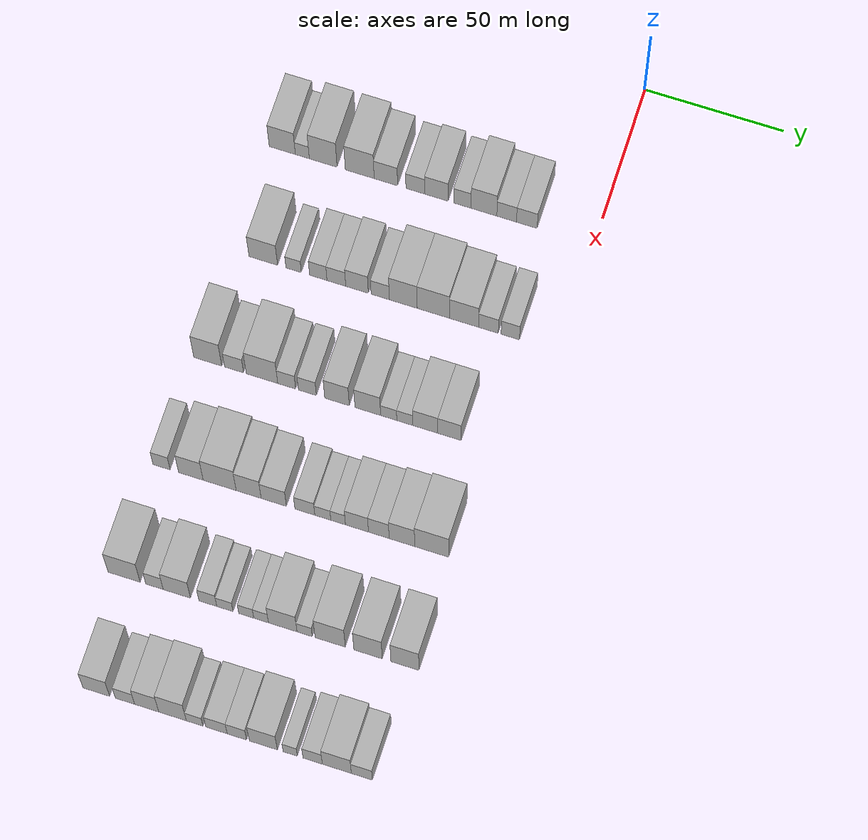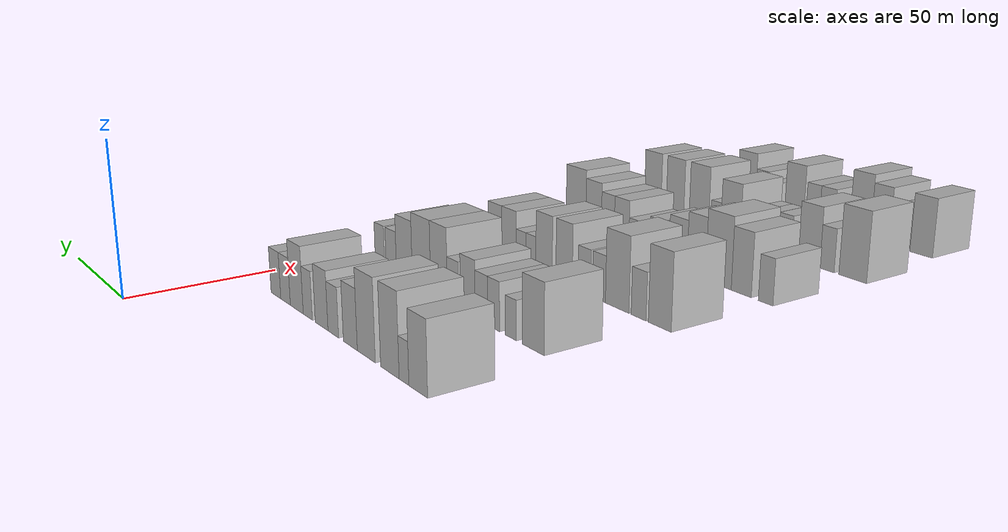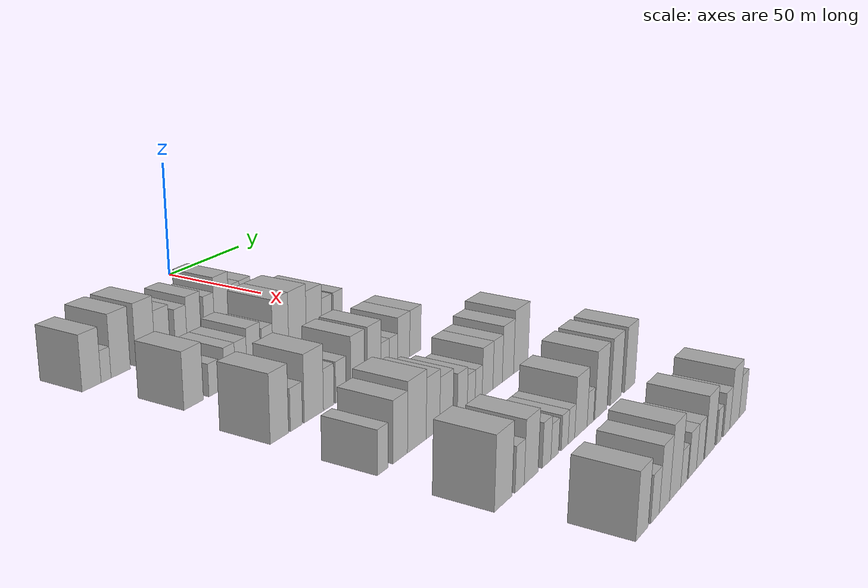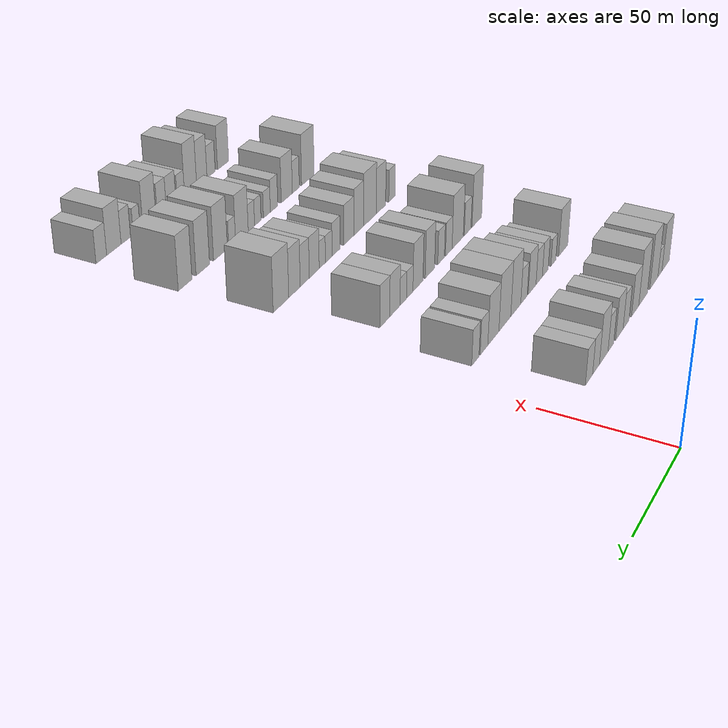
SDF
<sdf version="1.6">
 <world name="default">
  <model name="building_54">
   <static>1</static>
   <pose>50.0000 -112.4353 0 0.000000 0.000000 0.000000</pose>
   <link name="link">
    <pose>0 0 10.50 0 0 0</pose>
    <collision name="collision"><geometry><box><size>20.0000 9.4667 21.0000</size></box></geometry></collision>
    <visual name="visual">
     <cast_shadows>0</cast_shadows>
     <geometry><box><size>20.0000 9.4667 21.0000</size></box></geometry>
     <material>
      <script>
       <uri>model://HANNAS_wall/materials/scripts</uri>
       <uri>model://HANNAS_wall/materials/textures</uri>
       <name>vrc/HANNAS_wall</name>
      </script>
     </material>
    </visual>
   </link>
  </model>
  <model name="building_55">
   <static>1</static>
   <pose>50.0000 -105.1588 0 0.000000 0.000000 0.000000</pose>
   <link name="link">
    <pose>0 0 6.00 0 0 0</pose>
    <collision name="collision"><geometry><box><size>20.0000 5.0864 12.0000</size></box></geometry></collision>
    <visual name="visual">
     <cast_shadows>0</cast_shadows>
     <geometry><box><size>20.0000 5.0864 12.0000</size></box></geometry>
     <material>
      <script>
       <uri>model://HANNAS_wall/materials/scripts</uri>
       <uri>model://HANNAS_wall/materials/textures</uri>
       <name>vrc/HANNAS_wall</name>
      </script>
     </material>
    </visual>
   </link>
  </model>
  <model name="building_56">
   <static>1</static>
   <pose>50.0000 -97.5730 0 0.000000 0.000000 0.000000</pose>
   <link name="link">
    <pose>0 0 12.00 0 0 0</pose>
    <collision name="collision"><geometry><box><size>20.0000 10.0853 24.0000</size></box></geometry></collision>
    <visual name="visual">
     <cast_shadows>0</cast_shadows>
     <geometry><box><size>20.0000 10.0853 24.0000</size></box></geometry>
     <material>
      <script>
       <uri>model://HANNAS_wall/materials/scripts</uri>
       <uri>model://HANNAS_wall/materials/textures</uri>
       <name>vrc/HANNAS_wall</name>
      </script>
     </material>
    </visual>
   </link>
  </model>
  <model name="building_57">
   <static>1</static>
   <pose>50.0000 -84.2989 0 0.000000 0.000000 0.000000</pose>
   <link name="link">
    <pose>0 0 12.00 0 0 0</pose>
    <collision name="collision"><geometry><box><size>20.0000 10.4628 24.0000</size></box></geometry></collision>
    <visual name="visual">
     <cast_shadows>0</cast_shadows>
     <geometry><box><size>20.0000 10.4628 24.0000</size></box></geometry>
     <material>
      <script>
       <uri>model://HANNAS_wall/materials/scripts</uri>
       <uri>model://HANNAS_wall/materials/textures</uri>
       <name>vrc/HANNAS_wall</name>
      </script>
     </material>
    </visual>
   </link>
  </model>
  <model name="building_58">
   <static>1</static>
   <pose>50.0000 -74.8201 0 0.000000 0.000000 0.000000</pose>
   <link name="link">
    <pose>0 0 9.00 0 0 0</pose>
    <collision name="collision"><geometry><box><size>20.0000 8.4949 18.0000</size></box></geometry></collision>
    <visual name="visual">
     <cast_shadows>0</cast_shadows>
     <geometry><box><size>20.0000 8.4949 18.0000</size></box></geometry>
     <material>
      <script>
       <uri>model://HANNAS_wall/materials/scripts</uri>
       <uri>model://HANNAS_wall/materials/textures</uri>
       <name>vrc/HANNAS_wall</name>
      </script>
     </material>
    </visual>
   </link>
  </model>
  <model name="building_59">
   <static>1</static>
   <pose>50.0000 -64.1653 0 0.000000 0.000000 0.000000</pose>
   <link name="link">
    <pose>0 0 7.50 0 0 0</pose>
    <collision name="collision"><geometry><box><size>20.0000 6.8147 15.0000</size></box></geometry></collision>
    <visual name="visual">
     <cast_shadows>0</cast_shadows>
     <geometry><box><size>20.0000 6.8147 15.0000</size></box></geometry>
     <material>
      <script>
       <uri>model://HANNAS_wall/materials/scripts</uri>
       <uri>model://HANNAS_wall/materials/textures</uri>
       <name>vrc/HANNAS_wall</name>
      </script>
     </material>
    </visual>
   </link>
  </model>
  <model name="building_60">
   <static>1</static>
   <pose>50.0000 -56.5444 0 0.000000 0.000000 0.000000</pose>
   <link name="link">
    <pose>0 0 9.00 0 0 0</pose>
    <collision name="collision"><geometry><box><size>20.0000 8.4272 18.0000</size></box></geometry></collision>
    <visual name="visual">
     <cast_shadows>0</cast_shadows>
     <geometry><box><size>20.0000 8.4272 18.0000</size></box></geometry>
     <material>
      <script>
       <uri>model://HANNAS_wall/materials/scripts</uri>
       <uri>model://HANNAS_wall/materials/textures</uri>
       <name>vrc/HANNAS_wall</name>
      </script>
     </material>
    </visual>
   </link>
  </model>
  <model name="building_61">
   <static>1</static>
   <pose>50.0000 -47.1771 0 0.000000 0.000000 0.000000</pose>
   <link name="link">
    <pose>0 0 7.50 0 0 0</pose>
    <collision name="collision"><geometry><box><size>20.0000 6.3074 15.0000</size></box></geometry></collision>
    <visual name="visual">
     <cast_shadows>0</cast_shadows>
     <geometry><box><size>20.0000 6.3074 15.0000</size></box></geometry>
     <material>
      <script>
       <uri>model://HANNAS_wall/materials/scripts</uri>
       <uri>model://HANNAS_wall/materials/textures</uri>
       <name>vrc/HANNAS_wall</name>
      </script>
     </material>
    </visual>
   </link>
  </model>
  <model name="building_62">
   <static>1</static>
   <pose>50.0000 -39.3846 0 0.000000 0.000000 0.000000</pose>
   <link name="link">
    <pose>0 0 10.50 0 0 0</pose>
    <collision name="collision"><geometry><box><size>20.0000 9.2777 21.0000</size></box></geometry></collision>
    <visual name="visual">
     <cast_shadows>0</cast_shadows>
     <geometry><box><size>20.0000 9.2777 21.0000</size></box></geometry>
     <material>
      <script>
       <uri>model://HANNAS_wall/materials/scripts</uri>
       <uri>model://HANNAS_wall/materials/textures</uri>
       <name>vrc/HANNAS_wall</name>
      </script>
     </material>
    </visual>
   </link>
  </model>
  <model name="building_63">
   <static>1</static>
   <pose>50.0000 -31.2012 0 0.000000 0.000000 0.000000</pose>
   <link name="link">
    <pose>0 0 7.50 0 0 0</pose>
    <collision name="collision"><geometry><box><size>20.0000 7.0891 15.0000</size></box></geometry></collision>
    <visual name="visual">
     <cast_shadows>0</cast_shadows>
     <geometry><box><size>20.0000 7.0891 15.0000</size></box></geometry>
     <material>
      <script>
       <uri>model://HANNAS_wall/materials/scripts</uri>
       <uri>model://HANNAS_wall/materials/textures</uri>
       <name>vrc/HANNAS_wall</name>
      </script>
     </material>
    </visual>
   </link>
  </model>
  <model name="building_64">
   <static>1</static>
   <pose>50.0000 -23.9413 0 0.000000 0.000000 0.000000</pose>
   <link name="link">
    <pose>0 0 7.50 0 0 0</pose>
    <collision name="collision"><geometry><box><size>20.0000 7.4307 15.0000</size></box></geometry></collision>
    <visual name="visual">
     <cast_shadows>0</cast_shadows>
     <geometry><box><size>20.0000 7.4307 15.0000</size></box></geometry>
     <material>
      <script>
       <uri>model://HANNAS_wall/materials/scripts</uri>
       <uri>model://HANNAS_wall/materials/textures</uri>
       <name>vrc/HANNAS_wall</name>
      </script>
     </material>
    </visual>
   </link>
  </model>
  <model name="building_187">
   <static>1</static>
   <pose>90.0000 -105.8483 0 0.000000 0.000000 0.000000</pose>
   <link name="link">
    <pose>0 0 10.50 0 0 0</pose>
    <collision name="collision"><geometry><box><size>20.0000 10.3290 21.0000</size></box></geometry></collision>
    <visual name="visual">
     <cast_shadows>0</cast_shadows>
     <geometry><box><size>20.0000 10.3290 21.0000</size></box></geometry>
     <material>
      <script>
       <uri>model://HANNAS_wall/materials/scripts</uri>
       <uri>model://HANNAS_wall/materials/textures</uri>
       <name>vrc/HANNAS_wall</name>
      </script>
     </material>
    </visual>
   </link>
  </model>
  <model name="building_188">
   <static>1</static>
   <pose>90.0000 -94.9133 0 0.000000 0.000000 0.000000</pose>
   <link name="link">
    <pose>0 0 6.00 0 0 0</pose>
    <collision name="collision"><geometry><box><size>20.0000 5.5409 12.0000</size></box></geometry></collision>
    <visual name="visual">
     <cast_shadows>0</cast_shadows>
     <geometry><box><size>20.0000 5.5409 12.0000</size></box></geometry>
     <material>
      <script>
       <uri>model://HANNAS_wall/materials/scripts</uri>
       <uri>model://HANNAS_wall/materials/textures</uri>
       <name>vrc/HANNAS_wall</name>
      </script>
     </material>
    </visual>
   </link>
  </model>
  <model name="building_189">
   <static>1</static>
   <pose>90.0000 -86.0108 0 0.000000 0.000000 0.000000</pose>
   <link name="link">
    <pose>0 0 7.50 0 0 0</pose>
    <collision name="collision"><geometry><box><size>20.0000 6.2641 15.0000</size></box></geometry></collision>
    <visual name="visual">
     <cast_shadows>0</cast_shadows>
     <geometry><box><size>20.0000 6.2641 15.0000</size></box></geometry>
     <material>
      <script>
       <uri>model://HANNAS_wall/materials/scripts</uri>
       <uri>model://HANNAS_wall/materials/textures</uri>
       <name>vrc/HANNAS_wall</name>
      </script>
     </material>
    </visual>
   </link>
  </model>
  <model name="building_190">
   <static>1</static>
   <pose>90.0000 -79.5005 0 0.000000 0.000000 0.000000</pose>
   <link name="link">
    <pose>0 0 7.50 0 0 0</pose>
    <collision name="collision"><geometry><box><size>20.0000 6.7565 15.0000</size></box></geometry></collision>
    <visual name="visual">
     <cast_shadows>0</cast_shadows>
     <geometry><box><size>20.0000 6.7565 15.0000</size></box></geometry>
     <material>
      <script>
       <uri>model://HANNAS_wall/materials/scripts</uri>
       <uri>model://HANNAS_wall/materials/textures</uri>
       <name>vrc/HANNAS_wall</name>
      </script>
     </material>
    </visual>
   </link>
  </model>
  <model name="building_191">
   <static>1</static>
   <pose>90.0000 -72.0638 0 0.000000 0.000000 0.000000</pose>
   <link name="link">
    <pose>0 0 9.00 0 0 0</pose>
    <collision name="collision"><geometry><box><size>20.0000 8.1169 18.0000</size></box></geometry></collision>
    <visual name="visual">
     <cast_shadows>0</cast_shadows>
     <geometry><box><size>20.0000 8.1169 18.0000</size></box></geometry>
     <material>
      <script>
       <uri>model://HANNAS_wall/materials/scripts</uri>
       <uri>model://HANNAS_wall/materials/textures</uri>
       <name>vrc/HANNAS_wall</name>
      </script>
     </material>
    </visual>
   </link>
  </model>
  <model name="building_192">
   <static>1</static>
   <pose>90.0000 -63.7137 0 0.000000 0.000000 0.000000</pose>
   <link name="link">
    <pose>0 0 7.50 0 0 0</pose>
    <collision name="collision"><geometry><box><size>20.0000 6.5834 15.0000</size></box></geometry></collision>
    <visual name="visual">
     <cast_shadows>0</cast_shadows>
     <geometry><box><size>20.0000 6.5834 15.0000</size></box></geometry>
     <material>
      <script>
       <uri>model://HANNAS_wall/materials/scripts</uri>
       <uri>model://HANNAS_wall/materials/textures</uri>
       <name>vrc/HANNAS_wall</name>
      </script>
     </material>
    </visual>
   </link>
  </model>
  <model name="building_193">
   <static>1</static>
   <pose>90.0000 -55.4337 0 0.000000 0.000000 0.000000</pose>
   <link name="link">
    <pose>0 0 12.00 0 0 0</pose>
    <collision name="collision"><geometry><box><size>20.0000 9.9766 24.0000</size></box></geometry></collision>
    <visual name="visual">
     <cast_shadows>0</cast_shadows>
     <geometry><box><size>20.0000 9.9766 24.0000</size></box></geometry>
     <material>
      <script>
       <uri>model://HANNAS_wall/materials/scripts</uri>
       <uri>model://HANNAS_wall/materials/textures</uri>
       <name>vrc/HANNAS_wall</name>
      </script>
     </material>
    </visual>
   </link>
  </model>
  <model name="building_194">
   <static>1</static>
   <pose>90.0000 -44.6801 0 0.000000 0.000000 0.000000</pose>
   <link name="link">
    <pose>0 0 12.00 0 0 0</pose>
    <collision name="collision"><geometry><box><size>20.0000 11.5306 24.0000</size></box></geometry></collision>
    <visual name="visual">
     <cast_shadows>0</cast_shadows>
     <geometry><box><size>20.0000 11.5306 24.0000</size></box></geometry>
     <material>
      <script>
       <uri>model://HANNAS_wall/materials/scripts</uri>
       <uri>model://HANNAS_wall/materials/textures</uri>
       <name>vrc/HANNAS_wall</name>
      </script>
     </material>
    </visual>
   </link>
  </model>
  <model name="building_195">
   <static>1</static>
   <pose>90.0000 -33.7049 0 0.000000 0.000000 0.000000</pose>
   <link name="link">
    <pose>0 0 10.50 0 0 0</pose>
    <collision name="collision"><geometry><box><size>20.0000 10.4198 21.0000</size></box></geometry></collision>
    <visual name="visual">
     <cast_shadows>0</cast_shadows>
     <geometry><box><size>20.0000 10.4198 21.0000</size></box></geometry>
     <material>
      <script>
       <uri>model://HANNAS_wall/materials/scripts</uri>
       <uri>model://HANNAS_wall/materials/textures</uri>
       <name>vrc/HANNAS_wall</name>
      </script>
     </material>
    </visual>
   </link>
  </model>
  <model name="building_196">
   <static>1</static>
   <pose>90.0000 -24.9591 0 0.000000 0.000000 0.000000</pose>
   <link name="link">
    <pose>0 0 7.50 0 0 0</pose>
    <collision name="collision"><geometry><box><size>20.0000 7.0719 15.0000</size></box></geometry></collision>
    <visual name="visual">
     <cast_shadows>0</cast_shadows>
     <geometry><box><size>20.0000 7.0719 15.0000</size></box></geometry>
     <material>
      <script>
       <uri>model://HANNAS_wall/materials/scripts</uri>
       <uri>model://HANNAS_wall/materials/textures</uri>
       <name>vrc/HANNAS_wall</name>
      </script>
     </material>
    </visual>
   </link>
  </model>
  <model name="building_197">
   <static>1</static>
   <pose>90.0000 -17.1352 0 0.000000 0.000000 0.000000</pose>
   <link name="link">
    <pose>0 0 7.50 0 0 0</pose>
    <collision name="collision"><geometry><box><size>20.0000 6.5757 15.0000</size></box></geometry></collision>
    <visual name="visual">
     <cast_shadows>0</cast_shadows>
     <geometry><box><size>20.0000 6.5757 15.0000</size></box></geometry>
     <material>
      <script>
       <uri>model://HANNAS_wall/materials/scripts</uri>
       <uri>model://HANNAS_wall/materials/textures</uri>
       <name>vrc/HANNAS_wall</name>
      </script>
     </material>
    </visual>
   </link>
  </model>
  <model name="building_326">
   <static>1</static>
   <pose>130.0000 -112.2581 0 0.000000 0.000000 0.000000</pose>
   <link name="link">
    <pose>0 0 12.00 0 0 0</pose>
    <collision name="collision"><geometry><box><size>20.0000 10.0225 24.0000</size></box></geometry></collision>
    <visual name="visual">
     <cast_shadows>0</cast_shadows>
     <geometry><box><size>20.0000 10.0225 24.0000</size></box></geometry>
     <material>
      <script>
       <uri>model://HANNAS_wall/materials/scripts</uri>
       <uri>model://HANNAS_wall/materials/textures</uri>
       <name>vrc/HANNAS_wall</name>
      </script>
     </material>
    </visual>
   </link>
  </model>
  <model name="building_327">
   <static>1</static>
   <pose>130.0000 -102.8384 0 0.000000 0.000000 0.000000</pose>
   <link name="link">
    <pose>0 0 7.50 0 0 0</pose>
    <collision name="collision"><geometry><box><size>20.0000 6.8168 15.0000</size></box></geometry></collision>
    <visual name="visual">
     <cast_shadows>0</cast_shadows>
     <geometry><box><size>20.0000 6.8168 15.0000</size></box></geometry>
     <material>
      <script>
       <uri>model://HANNAS_wall/materials/scripts</uri>
       <uri>model://HANNAS_wall/materials/textures</uri>
       <name>vrc/HANNAS_wall</name>
      </script>
     </material>
    </visual>
   </link>
  </model>
  <model name="building_328">
   <static>1</static>
   <pose>130.0000 -92.8006 0 0.000000 0.000000 0.000000</pose>
   <link name="link">
    <pose>0 0 12.00 0 0 0</pose>
    <collision name="collision"><geometry><box><size>20.0000 11.2587 24.0000</size></box></geometry></collision>
    <visual name="visual">
     <cast_shadows>0</cast_shadows>
     <geometry><box><size>20.0000 11.2587 24.0000</size></box></geometry>
     <material>
      <script>
       <uri>model://HANNAS_wall/materials/scripts</uri>
       <uri>model://HANNAS_wall/materials/textures</uri>
       <name>vrc/HANNAS_wall</name>
      </script>
     </material>
    </visual>
   </link>
  </model>
  <model name="building_329">
   <static>1</static>
   <pose>130.0000 -83.9653 0 0.000000 0.000000 0.000000</pose>
   <link name="link">
    <pose>0 0 7.50 0 0 0</pose>
    <collision name="collision"><geometry><box><size>20.0000 6.4120 15.0000</size></box></geometry></collision>
    <visual name="visual">
     <cast_shadows>0</cast_shadows>
     <geometry><box><size>20.0000 6.4120 15.0000</size></box></geometry>
     <material>
      <script>
       <uri>model://HANNAS_wall/materials/scripts</uri>
       <uri>model://HANNAS_wall/materials/textures</uri>
       <name>vrc/HANNAS_wall</name>
      </script>
     </material>
    </visual>
   </link>
  </model>
  <model name="building_330">
   <static>1</static>
   <pose>130.0000 -76.5614 0 0.000000 0.000000 0.000000</pose>
   <link name="link">
    <pose>0 0 7.50 0 0 0</pose>
    <collision name="collision"><geometry><box><size>20.0000 6.3957 15.0000</size></box></geometry></collision>
    <visual name="visual">
     <cast_shadows>0</cast_shadows>
     <geometry><box><size>20.0000 6.3957 15.0000</size></box></geometry>
     <material>
      <script>
       <uri>model://HANNAS_wall/materials/scripts</uri>
       <uri>model://HANNAS_wall/materials/textures</uri>
       <name>vrc/HANNAS_wall</name>
      </script>
     </material>
    </visual>
   </link>
  </model>
  <model name="building_331">
   <static>1</static>
   <pose>130.0000 -65.9730 0 0.000000 0.000000 0.000000</pose>
   <link name="link">
    <pose>0 0 10.50 0 0 0</pose>
    <collision name="collision"><geometry><box><size>20.0000 8.7811 21.0000</size></box></geometry></collision>
    <visual name="visual">
     <cast_shadows>0</cast_shadows>
     <geometry><box><size>20.0000 8.7811 21.0000</size></box></geometry>
     <material>
      <script>
       <uri>model://HANNAS_wall/materials/scripts</uri>
       <uri>model://HANNAS_wall/materials/textures</uri>
       <name>vrc/HANNAS_wall</name>
      </script>
     </material>
    </visual>
   </link>
  </model>
  <model name="building_332">
   <static>1</static>
   <pose>130.0000 -55.0049 0 0.000000 0.000000 0.000000</pose>
   <link name="link">
    <pose>0 0 10.50 0 0 0</pose>
    <collision name="collision"><geometry><box><size>20.0000 9.1551 21.0000</size></box></geometry></collision>
    <visual name="visual">
     <cast_shadows>0</cast_shadows>
     <geometry><box><size>20.0000 9.1551 21.0000</size></box></geometry>
     <material>
      <script>
       <uri>model://HANNAS_wall/materials/scripts</uri>
       <uri>model://HANNAS_wall/materials/textures</uri>
       <name>vrc/HANNAS_wall</name>
      </script>
     </material>
    </visual>
   </link>
  </model>
  <model name="building_333">
   <static>1</static>
   <pose>130.0000 -47.5515 0 0.000000 0.000000 0.000000</pose>
   <link name="link">
    <pose>0 0 6.00 0 0 0</pose>
    <collision name="collision"><geometry><box><size>20.0000 5.7517 12.0000</size></box></geometry></collision>
    <visual name="visual">
     <cast_shadows>0</cast_shadows>
     <geometry><box><size>20.0000 5.7517 12.0000</size></box></geometry>
     <material>
      <script>
       <uri>model://HANNAS_wall/materials/scripts</uri>
       <uri>model://HANNAS_wall/materials/textures</uri>
       <name>vrc/HANNAS_wall</name>
      </script>
     </material>
    </visual>
   </link>
  </model>
  <model name="building_334">
   <static>1</static>
   <pose>130.0000 -41.8206 0 0.000000 0.000000 0.000000</pose>
   <link name="link">
    <pose>0 0 6.00 0 0 0</pose>
    <collision name="collision"><geometry><box><size>20.0000 5.7101 12.0000</size></box></geometry></collision>
    <visual name="visual">
     <cast_shadows>0</cast_shadows>
     <geometry><box><size>20.0000 5.7101 12.0000</size></box></geometry>
     <material>
      <script>
       <uri>model://HANNAS_wall/materials/scripts</uri>
       <uri>model://HANNAS_wall/materials/textures</uri>
       <name>vrc/HANNAS_wall</name>
      </script>
     </material>
    </visual>
   </link>
  </model>
  <model name="building_335">
   <static>1</static>
   <pose>130.0000 -34.5185 0 0.000000 0.000000 0.000000</pose>
   <link name="link">
    <pose>0 0 9.00 0 0 0</pose>
    <collision name="collision"><geometry><box><size>20.0000 8.8942 18.0000</size></box></geometry></collision>
    <visual name="visual">
     <cast_shadows>0</cast_shadows>
     <geometry><box><size>20.0000 8.8942 18.0000</size></box></geometry>
     <material>
      <script>
       <uri>model://HANNAS_wall/materials/scripts</uri>
       <uri>model://HANNAS_wall/materials/textures</uri>
       <name>vrc/HANNAS_wall</name>
      </script>
     </material>
    </visual>
   </link>
  </model>
  <model name="building_336">
   <static>1</static>
   <pose>130.0000 -25.9220 0 0.000000 0.000000 0.000000</pose>
   <link name="link">
    <pose>0 0 9.00 0 0 0</pose>
    <collision name="collision"><geometry><box><size>20.0000 8.2987 18.0000</size></box></geometry></collision>
    <visual name="visual">
     <cast_shadows>0</cast_shadows>
     <geometry><box><size>20.0000 8.2987 18.0000</size></box></geometry>
     <material>
      <script>
       <uri>model://HANNAS_wall/materials/scripts</uri>
       <uri>model://HANNAS_wall/materials/textures</uri>
       <name>vrc/HANNAS_wall</name>
      </script>
     </material>
    </visual>
   </link>
  </model>
  <model name="building_463">
   <static>1</static>
   <pose>170.0000 -115.0658 0 0.000000 0.000000 0.000000</pose>
   <link name="link">
    <pose>0 0 7.50 0 0 0</pose>
    <collision name="collision"><geometry><box><size>20.0000 6.1217 15.0000</size></box></geometry></collision>
    <visual name="visual">
     <cast_shadows>0</cast_shadows>
     <geometry><box><size>20.0000 6.1217 15.0000</size></box></geometry>
     <material>
      <script>
       <uri>model://HANNAS_wall/materials/scripts</uri>
       <uri>model://HANNAS_wall/materials/textures</uri>
       <name>vrc/HANNAS_wall</name>
      </script>
     </material>
    </visual>
   </link>
  </model>
  <model name="building_464">
   <static>1</static>
   <pose>170.0000 -104.6261 0 0.000000 0.000000 0.000000</pose>
   <link name="link">
    <pose>0 0 10.50 0 0 0</pose>
    <collision name="collision"><geometry><box><size>20.0000 8.7578 21.0000</size></box></geometry></collision>
    <visual name="visual">
     <cast_shadows>0</cast_shadows>
     <geometry><box><size>20.0000 8.7578 21.0000</size></box></geometry>
     <material>
      <script>
       <uri>model://HANNAS_wall/materials/scripts</uri>
       <uri>model://HANNAS_wall/materials/textures</uri>
       <name>vrc/HANNAS_wall</name>
      </script>
     </material>
    </visual>
   </link>
  </model>
  <model name="building_465">
   <static>1</static>
   <pose>170.0000 -94.3748 0 0.000000 0.000000 0.000000</pose>
   <link name="link">
    <pose>0 0 12.00 0 0 0</pose>
    <collision name="collision"><geometry><box><size>20.0000 11.7447 24.0000</size></box></geometry></collision>
    <visual name="visual">
     <cast_shadows>0</cast_shadows>
     <geometry><box><size>20.0000 11.7447 24.0000</size></box></geometry>
     <material>
      <script>
       <uri>model://HANNAS_wall/materials/scripts</uri>
       <uri>model://HANNAS_wall/materials/textures</uri>
       <name>vrc/HANNAS_wall</name>
      </script>
     </material>
    </visual>
   </link>
  </model>
  <model name="building_466">
   <static>1</static>
   <pose>170.0000 -84.0543 0 0.000000 0.000000 0.000000</pose>
   <link name="link">
    <pose>0 0 10.50 0 0 0</pose>
    <collision name="collision"><geometry><box><size>20.0000 8.8963 21.0000</size></box></geometry></collision>
    <visual name="visual">
     <cast_shadows>0</cast_shadows>
     <geometry><box><size>20.0000 8.8963 21.0000</size></box></geometry>
     <material>
      <script>
       <uri>model://HANNAS_wall/materials/scripts</uri>
       <uri>model://HANNAS_wall/materials/textures</uri>
       <name>vrc/HANNAS_wall</name>
      </script>
     </material>
    </visual>
   </link>
  </model>
  <model name="building_467">
   <static>1</static>
   <pose>170.0000 -75.1190 0 0.000000 0.000000 0.000000</pose>
   <link name="link">
    <pose>0 0 9.00 0 0 0</pose>
    <collision name="collision"><geometry><box><size>20.0000 8.9744 18.0000</size></box></geometry></collision>
    <visual name="visual">
     <cast_shadows>0</cast_shadows>
     <geometry><box><size>20.0000 8.9744 18.0000</size></box></geometry>
     <material>
      <script>
       <uri>model://HANNAS_wall/materials/scripts</uri>
       <uri>model://HANNAS_wall/materials/textures</uri>
       <name>vrc/HANNAS_wall</name>
      </script>
     </material>
    </visual>
   </link>
  </model>
  <model name="building_468">
   <static>1</static>
   <pose>170.0000 -64.0998 0 0.000000 0.000000 0.000000</pose>
   <link name="link">
    <pose>0 0 7.50 0 0 0</pose>
    <collision name="collision"><geometry><box><size>20.0000 7.0638 15.0000</size></box></geometry></collision>
    <visual name="visual">
     <cast_shadows>0</cast_shadows>
     <geometry><box><size>20.0000 7.0638 15.0000</size></box></geometry>
     <material>
      <script>
       <uri>model://HANNAS_wall/materials/scripts</uri>
       <uri>model://HANNAS_wall/materials/textures</uri>
       <name>vrc/HANNAS_wall</name>
      </script>
     </material>
    </visual>
   </link>
  </model>
  <model name="building_469">
   <static>1</static>
   <pose>170.0000 -57.7387 0 0.000000 0.000000 0.000000</pose>
   <link name="link">
    <pose>0 0 6.00 0 0 0</pose>
    <collision name="collision"><geometry><box><size>20.0000 5.6585 12.0000</size></box></geometry></collision>
    <visual name="visual">
     <cast_shadows>0</cast_shadows>
     <geometry><box><size>20.0000 5.6585 12.0000</size></box></geometry>
     <material>
      <script>
       <uri>model://HANNAS_wall/materials/scripts</uri>
       <uri>model://HANNAS_wall/materials/textures</uri>
       <name>vrc/HANNAS_wall</name>
      </script>
     </material>
    </visual>
   </link>
  </model>
  <model name="building_470">
   <static>1</static>
   <pose>170.0000 -52.3107 0 0.000000 0.000000 0.000000</pose>
   <link name="link">
    <pose>0 0 6.00 0 0 0</pose>
    <collision name="collision"><geometry><box><size>20.0000 5.1975 12.0000</size></box></geometry></collision>
    <visual name="visual">
     <cast_shadows>0</cast_shadows>
     <geometry><box><size>20.0000 5.1975 12.0000</size></box></geometry>
     <material>
      <script>
       <uri>model://HANNAS_wall/materials/scripts</uri>
       <uri>model://HANNAS_wall/materials/textures</uri>
       <name>vrc/HANNAS_wall</name>
      </script>
     </material>
    </visual>
   </link>
  </model>
  <model name="building_471">
   <static>1</static>
   <pose>170.0000 -45.6463 0 0.000000 0.000000 0.000000</pose>
   <link name="link">
    <pose>0 0 9.00 0 0 0</pose>
    <collision name="collision"><geometry><box><size>20.0000 8.1312 18.0000</size></box></geometry></collision>
    <visual name="visual">
     <cast_shadows>0</cast_shadows>
     <geometry><box><size>20.0000 8.1312 18.0000</size></box></geometry>
     <material>
      <script>
       <uri>model://HANNAS_wall/materials/scripts</uri>
       <uri>model://HANNAS_wall/materials/textures</uri>
       <name>vrc/HANNAS_wall</name>
      </script>
     </material>
    </visual>
   </link>
  </model>
  <model name="building_472">
   <static>1</static>
   <pose>170.0000 -37.9213 0 0.000000 0.000000 0.000000</pose>
   <link name="link">
    <pose>0 0 9.00 0 0 0</pose>
    <collision name="collision"><geometry><box><size>20.0000 7.3190 18.0000</size></box></geometry></collision>
    <visual name="visual">
     <cast_shadows>0</cast_shadows>
     <geometry><box><size>20.0000 7.3190 18.0000</size></box></geometry>
     <material>
      <script>
       <uri>model://HANNAS_wall/materials/scripts</uri>
       <uri>model://HANNAS_wall/materials/textures</uri>
       <name>vrc/HANNAS_wall</name>
      </script>
     </material>
    </visual>
   </link>
  </model>
  <model name="building_473">
   <static>1</static>
   <pose>170.0000 -29.7418 0 0.000000 0.000000 0.000000</pose>
   <link name="link">
    <pose>0 0 10.50 0 0 0</pose>
    <collision name="collision"><geometry><box><size>20.0000 9.0400 21.0000</size></box></geometry></collision>
    <visual name="visual">
     <cast_shadows>0</cast_shadows>
     <geometry><box><size>20.0000 9.0400 21.0000</size></box></geometry>
     <material>
      <script>
       <uri>model://HANNAS_wall/materials/scripts</uri>
       <uri>model://HANNAS_wall/materials/textures</uri>
       <name>vrc/HANNAS_wall</name>
      </script>
     </material>
    </visual>
   </link>
  </model>
  <model name="building_474">
   <static>1</static>
   <pose>170.0000 -19.2399 0 0.000000 0.000000 0.000000</pose>
   <link name="link">
    <pose>0 0 12.00 0 0 0</pose>
    <collision name="collision"><geometry><box><size>20.0000 11.9636 24.0000</size></box></geometry></collision>
    <visual name="visual">
     <cast_shadows>0</cast_shadows>
     <geometry><box><size>20.0000 11.9636 24.0000</size></box></geometry>
     <material>
      <script>
       <uri>model://HANNAS_wall/materials/scripts</uri>
       <uri>model://HANNAS_wall/materials/textures</uri>
       <name>vrc/HANNAS_wall</name>
      </script>
     </material>
    </visual>
   </link>
  </model>
  <model name="building_600">
   <static>1</static>
   <pose>210.0000 -114.5397 0 0.000000 0.000000 0.000000</pose>
   <link name="link">
    <pose>0 0 12.00 0 0 0</pose>
    <collision name="collision"><geometry><box><size>20.0000 11.3957 24.0000</size></box></geometry></collision>
    <visual name="visual">
     <cast_shadows>0</cast_shadows>
     <geometry><box><size>20.0000 11.3957 24.0000</size></box></geometry>
     <material>
      <script>
       <uri>model://HANNAS_wall/materials/scripts</uri>
       <uri>model://HANNAS_wall/materials/textures</uri>
       <name>vrc/HANNAS_wall</name>
      </script>
     </material>
    </visual>
   </link>
  </model>
  <model name="building_601">
   <static>1</static>
   <pose>210.0000 -103.7650 0 0.000000 0.000000 0.000000</pose>
   <link name="link">
    <pose>0 0 7.50 0 0 0</pose>
    <collision name="collision"><geometry><box><size>20.0000 6.1537 15.0000</size></box></geometry></collision>
    <visual name="visual">
     <cast_shadows>0</cast_shadows>
     <geometry><box><size>20.0000 6.1537 15.0000</size></box></geometry>
     <material>
      <script>
       <uri>model://HANNAS_wall/materials/scripts</uri>
       <uri>model://HANNAS_wall/materials/textures</uri>
       <name>vrc/HANNAS_wall</name>
      </script>
     </material>
    </visual>
   </link>
  </model>
  <model name="building_602">
   <static>1</static>
   <pose>210.0000 -95.8629 0 0.000000 0.000000 0.000000</pose>
   <link name="link">
    <pose>0 0 10.50 0 0 0</pose>
    <collision name="collision"><geometry><box><size>20.0000 9.6505 21.0000</size></box></geometry></collision>
    <visual name="visual">
     <cast_shadows>0</cast_shadows>
     <geometry><box><size>20.0000 9.6505 21.0000</size></box></geometry>
     <material>
      <script>
       <uri>model://HANNAS_wall/materials/scripts</uri>
       <uri>model://HANNAS_wall/materials/textures</uri>
       <name>vrc/HANNAS_wall</name>
      </script>
     </material>
    </visual>
   </link>
  </model>
  <model name="building_603">
   <static>1</static>
   <pose>210.0000 -84.8911 0 0.000000 0.000000 0.000000</pose>
   <link name="link">
    <pose>0 0 7.50 0 0 0</pose>
    <collision name="collision"><geometry><box><size>20.0000 6.2931 15.0000</size></box></geometry></collision>
    <visual name="visual">
     <cast_shadows>0</cast_shadows>
     <geometry><box><size>20.0000 6.2931 15.0000</size></box></geometry>
     <material>
      <script>
       <uri>model://HANNAS_wall/materials/scripts</uri>
       <uri>model://HANNAS_wall/materials/textures</uri>
       <name>vrc/HANNAS_wall</name>
      </script>
     </material>
    </visual>
   </link>
  </model>
  <model name="building_604">
   <static>1</static>
   <pose>210.0000 -78.8735 0 0.000000 0.000000 0.000000</pose>
   <link name="link">
    <pose>0 0 6.00 0 0 0</pose>
    <collision name="collision"><geometry><box><size>20.0000 5.7421 12.0000</size></box></geometry></collision>
    <visual name="visual">
     <cast_shadows>0</cast_shadows>
     <geometry><box><size>20.0000 5.7421 12.0000</size></box></geometry>
     <material>
      <script>
       <uri>model://HANNAS_wall/materials/scripts</uri>
       <uri>model://HANNAS_wall/materials/textures</uri>
       <name>vrc/HANNAS_wall</name>
      </script>
     </material>
    </visual>
   </link>
  </model>
  <model name="building_605">
   <static>1</static>
   <pose>210.0000 -71.3467 0 0.000000 0.000000 0.000000</pose>
   <link name="link">
    <pose>0 0 6.00 0 0 0</pose>
    <collision name="collision"><geometry><box><size>20.0000 5.3117 12.0000</size></box></geometry></collision>
    <visual name="visual">
     <cast_shadows>0</cast_shadows>
     <geometry><box><size>20.0000 5.3117 12.0000</size></box></geometry>
     <material>
      <script>
       <uri>model://HANNAS_wall/materials/scripts</uri>
       <uri>model://HANNAS_wall/materials/textures</uri>
       <name>vrc/HANNAS_wall</name>
      </script>
     </material>
    </visual>
   </link>
  </model>
  <model name="building_606">
   <static>1</static>
   <pose>210.0000 -66.1086 0 0.000000 0.000000 0.000000</pose>
   <link name="link">
    <pose>0 0 6.00 0 0 0</pose>
    <collision name="collision"><geometry><box><size>20.0000 5.1645 12.0000</size></box></geometry></collision>
    <visual name="visual">
     <cast_shadows>0</cast_shadows>
     <geometry><box><size>20.0000 5.1645 12.0000</size></box></geometry>
     <material>
      <script>
       <uri>model://HANNAS_wall/materials/scripts</uri>
       <uri>model://HANNAS_wall/materials/textures</uri>
       <name>vrc/HANNAS_wall</name>
      </script>
     </material>
    </visual>
   </link>
  </model>
  <model name="building_607">
   <static>1</static>
   <pose>210.0000 -58.4874 0 0.000000 0.000000 0.000000</pose>
   <link name="link">
    <pose>0 0 10.50 0 0 0</pose>
    <collision name="collision"><geometry><box><size>20.0000 10.0779 21.0000</size></box></geometry></collision>
    <visual name="visual">
     <cast_shadows>0</cast_shadows>
     <geometry><box><size>20.0000 10.0779 21.0000</size></box></geometry>
     <material>
      <script>
       <uri>model://HANNAS_wall/materials/scripts</uri>
       <uri>model://HANNAS_wall/materials/textures</uri>
       <name>vrc/HANNAS_wall</name>
      </script>
     </material>
    </visual>
   </link>
  </model>
  <model name="building_608">
   <static>1</static>
   <pose>210.0000 -50.7761 0 0.000000 0.000000 0.000000</pose>
   <link name="link">
    <pose>0 0 6.00 0 0 0</pose>
    <collision name="collision"><geometry><box><size>20.0000 5.3446 12.0000</size></box></geometry></collision>
    <visual name="visual">
     <cast_shadows>0</cast_shadows>
     <geometry><box><size>20.0000 5.3446 12.0000</size></box></geometry>
     <material>
      <script>
       <uri>model://HANNAS_wall/materials/scripts</uri>
       <uri>model://HANNAS_wall/materials/textures</uri>
       <name>vrc/HANNAS_wall</name>
      </script>
     </material>
    </visual>
   </link>
  </model>
  <model name="building_609">
   <static>1</static>
   <pose>210.0000 -41.8039 0 0.000000 0.000000 0.000000</pose>
   <link name="link">
    <pose>0 0 12.00 0 0 0</pose>
    <collision name="collision"><geometry><box><size>20.0000 10.5999 24.0000</size></box></geometry></collision>
    <visual name="visual">
     <cast_shadows>0</cast_shadows>
     <geometry><box><size>20.0000 10.5999 24.0000</size></box></geometry>
     <material>
      <script>
       <uri>model://HANNAS_wall/materials/scripts</uri>
       <uri>model://HANNAS_wall/materials/textures</uri>
       <name>vrc/HANNAS_wall</name>
      </script>
     </material>
    </visual>
   </link>
  </model>
  <model name="building_610">
   <static>1</static>
   <pose>210.0000 -28.5193 0 0.000000 0.000000 0.000000</pose>
   <link name="link">
    <pose>0 0 12.00 0 0 0</pose>
    <collision name="collision"><geometry><box><size>20.0000 9.9693 24.0000</size></box></geometry></collision>
    <visual name="visual">
     <cast_shadows>0</cast_shadows>
     <geometry><box><size>20.0000 9.9693 24.0000</size></box></geometry>
     <material>
      <script>
       <uri>model://HANNAS_wall/materials/scripts</uri>
       <uri>model://HANNAS_wall/materials/textures</uri>
       <name>vrc/HANNAS_wall</name>
      </script>
     </material>
    </visual>
   </link>
  </model>
  <model name="building_611">
   <static>1</static>
   <pose>210.0000 -15.6030 0 0.000000 0.000000 0.000000</pose>
   <link name="link">
    <pose>0 0 12.00 0 0 0</pose>
    <collision name="collision"><geometry><box><size>20.0000 9.8634 24.0000</size></box></geometry></collision>
    <visual name="visual">
     <cast_shadows>0</cast_shadows>
     <geometry><box><size>20.0000 9.8634 24.0000</size></box></geometry>
     <material>
      <script>
       <uri>model://HANNAS_wall/materials/scripts</uri>
       <uri>model://HANNAS_wall/materials/textures</uri>
       <name>vrc/HANNAS_wall</name>
      </script>
     </material>
    </visual>
   </link>
  </model>
  <model name="building_733">
   <static>1</static>
   <pose>250.0000 -110.3528 0 0.000000 0.000000 0.000000</pose>
   <link name="link">
    <pose>0 0 10.50 0 0 0</pose>
    <collision name="collision"><geometry><box><size>20.0000 9.3870 21.0000</size></box></geometry></collision>
    <visual name="visual">
     <cast_shadows>0</cast_shadows>
     <geometry><box><size>20.0000 9.3870 21.0000</size></box></geometry>
     <material>
      <script>
       <uri>model://HANNAS_wall/materials/scripts</uri>
       <uri>model://HANNAS_wall/materials/textures</uri>
       <name>vrc/HANNAS_wall</name>
      </script>
     </material>
    </visual>
   </link>
  </model>
  <model name="building_734">
   <static>1</static>
   <pose>250.0000 -100.2639 0 0.000000 0.000000 0.000000</pose>
   <link name="link">
    <pose>0 0 7.50 0 0 0</pose>
    <collision name="collision"><geometry><box><size>20.0000 6.7907 15.0000</size></box></geometry></collision>
    <visual name="visual">
     <cast_shadows>0</cast_shadows>
     <geometry><box><size>20.0000 6.7907 15.0000</size></box></geometry>
     <material>
      <script>
       <uri>model://HANNAS_wall/materials/scripts</uri>
       <uri>model://HANNAS_wall/materials/textures</uri>
       <name>vrc/HANNAS_wall</name>
      </script>
     </material>
    </visual>
   </link>
  </model>
  <model name="building_735">
   <static>1</static>
   <pose>250.0000 -92.6438 0 0.000000 0.000000 0.000000</pose>
   <link name="link">
    <pose>0 0 10.50 0 0 0</pose>
    <collision name="collision"><geometry><box><size>20.0000 8.4495 21.0000</size></box></geometry></collision>
    <visual name="visual">
     <cast_shadows>0</cast_shadows>
     <geometry><box><size>20.0000 8.4495 21.0000</size></box></geometry>
     <material>
      <script>
       <uri>model://HANNAS_wall/materials/scripts</uri>
       <uri>model://HANNAS_wall/materials/textures</uri>
       <name>vrc/HANNAS_wall</name>
      </script>
     </material>
    </visual>
   </link>
  </model>
  <model name="building_736">
   <static>1</static>
   <pose>250.0000 -83.5761 0 0.000000 0.000000 0.000000</pose>
   <link name="link">
    <pose>0 0 12.00 0 0 0</pose>
    <collision name="collision"><geometry><box><size>20.0000 9.6858 24.0000</size></box></geometry></collision>
    <visual name="visual">
     <cast_shadows>0</cast_shadows>
     <geometry><box><size>20.0000 9.6858 24.0000</size></box></geometry>
     <material>
      <script>
       <uri>model://HANNAS_wall/materials/scripts</uri>
       <uri>model://HANNAS_wall/materials/textures</uri>
       <name>vrc/HANNAS_wall</name>
      </script>
     </material>
    </visual>
   </link>
  </model>
  <model name="building_737">
   <static>1</static>
   <pose>250.0000 -75.8266 0 0.000000 0.000000 0.000000</pose>
   <link name="link">
    <pose>0 0 6.00 0 0 0</pose>
    <collision name="collision"><geometry><box><size>20.0000 5.8133 12.0000</size></box></geometry></collision>
    <visual name="visual">
     <cast_shadows>0</cast_shadows>
     <geometry><box><size>20.0000 5.8133 12.0000</size></box></geometry>
     <material>
      <script>
       <uri>model://HANNAS_wall/materials/scripts</uri>
       <uri>model://HANNAS_wall/materials/textures</uri>
       <name>vrc/HANNAS_wall</name>
      </script>
     </material>
    </visual>
   </link>
  </model>
  <model name="building_738">
   <static>1</static>
   <pose>250.0000 -68.1977 0 0.000000 0.000000 0.000000</pose>
   <link name="link">
    <pose>0 0 7.50 0 0 0</pose>
    <collision name="collision"><geometry><box><size>20.0000 7.4445 15.0000</size></box></geometry></collision>
    <visual name="visual">
     <cast_shadows>0</cast_shadows>
     <geometry><box><size>20.0000 7.4445 15.0000</size></box></geometry>
     <material>
      <script>
       <uri>model://HANNAS_wall/materials/scripts</uri>
       <uri>model://HANNAS_wall/materials/textures</uri>
       <name>vrc/HANNAS_wall</name>
      </script>
     </material>
    </visual>
   </link>
  </model>
  <model name="building_739">
   <static>1</static>
   <pose>250.0000 -61.0748 0 0.000000 0.000000 0.000000</pose>
   <link name="link">
    <pose>0 0 7.50 0 0 0</pose>
    <collision name="collision"><geometry><box><size>20.0000 6.8011 15.0000</size></box></geometry></collision>
    <visual name="visual">
     <cast_shadows>0</cast_shadows>
     <geometry><box><size>20.0000 6.8011 15.0000</size></box></geometry>
     <material>
      <script>
       <uri>model://HANNAS_wall/materials/scripts</uri>
       <uri>model://HANNAS_wall/materials/textures</uri>
       <name>vrc/HANNAS_wall</name>
      </script>
     </material>
    </visual>
   </link>
  </model>
  <model name="building_740">
   <static>1</static>
   <pose>250.0000 -51.7899 0 0.000000 0.000000 0.000000</pose>
   <link name="link">
    <pose>0 0 10.50 0 0 0</pose>
    <collision name="collision"><geometry><box><size>20.0000 9.7688 21.0000</size></box></geometry></collision>
    <visual name="visual">
     <cast_shadows>0</cast_shadows>
     <geometry><box><size>20.0000 9.7688 21.0000</size></box></geometry>
     <material>
      <script>
       <uri>model://HANNAS_wall/materials/scripts</uri>
       <uri>model://HANNAS_wall/materials/textures</uri>
       <name>vrc/HANNAS_wall</name>
      </script>
     </material>
    </visual>
   </link>
  </model>
  <model name="building_741">
   <static>1</static>
   <pose>250.0000 -42.4333 0 0.000000 0.000000 0.000000</pose>
   <link name="link">
    <pose>0 0 6.00 0 0 0</pose>
    <collision name="collision"><geometry><box><size>20.0000 4.9443 12.0000</size></box></geometry></collision>
    <visual name="visual">
     <cast_shadows>0</cast_shadows>
     <geometry><box><size>20.0000 4.9443 12.0000</size></box></geometry>
     <material>
      <script>
       <uri>model://HANNAS_wall/materials/scripts</uri>
       <uri>model://HANNAS_wall/materials/textures</uri>
       <name>vrc/HANNAS_wall</name>
      </script>
     </material>
    </visual>
   </link>
  </model>
  <model name="building_742">
   <static>1</static>
   <pose>250.0000 -34.6093 0 0.000000 0.000000 0.000000</pose>
   <link name="link">
    <pose>0 0 7.50 0 0 0</pose>
    <collision name="collision"><geometry><box><size>20.0000 6.7038 15.0000</size></box></geometry></collision>
    <visual name="visual">
     <cast_shadows>0</cast_shadows>
     <geometry><box><size>20.0000 6.7038 15.0000</size></box></geometry>
     <material>
      <script>
       <uri>model://HANNAS_wall/materials/scripts</uri>
       <uri>model://HANNAS_wall/materials/textures</uri>
       <name>vrc/HANNAS_wall</name>
      </script>
     </material>
    </visual>
   </link>
  </model>
  <model name="building_743">
   <static>1</static>
   <pose>250.0000 -26.2024 0 0.000000 0.000000 0.000000</pose>
   <link name="link">
    <pose>0 0 10.50 0 0 0</pose>
    <collision name="collision"><geometry><box><size>20.0000 10.1099 21.0000</size></box></geometry></collision>
    <visual name="visual">
     <cast_shadows>0</cast_shadows>
     <geometry><box><size>20.0000 10.1099 21.0000</size></box></geometry>
     <material>
      <script>
       <uri>model://HANNAS_wall/materials/scripts</uri>
       <uri>model://HANNAS_wall/materials/textures</uri>
       <name>vrc/HANNAS_wall</name>
      </script>
     </material>
    </visual>
   </link>
  </model>
  <model name="building_744">
   <static>1</static>
   <pose>250.0000 -17.4908 0 0.000000 0.000000 0.000000</pose>
   <link name="link">
    <pose>0 0 7.50 0 0 0</pose>
    <collision name="collision"><geometry><box><size>20.0000 7.3134 15.0000</size></box></geometry></collision>
    <visual name="visual">
     <cast_shadows>0</cast_shadows>
     <geometry><box><size>20.0000 7.3134 15.0000</size></box></geometry>
     <material>
      <script>
       <uri>model://HANNAS_wall/materials/scripts</uri>
       <uri>model://HANNAS_wall/materials/textures</uri>
       <name>vrc/HANNAS_wall</name>
      </script>
     </material>
    </visual>
   </link>
  </model>
 </world>
</sdf>
